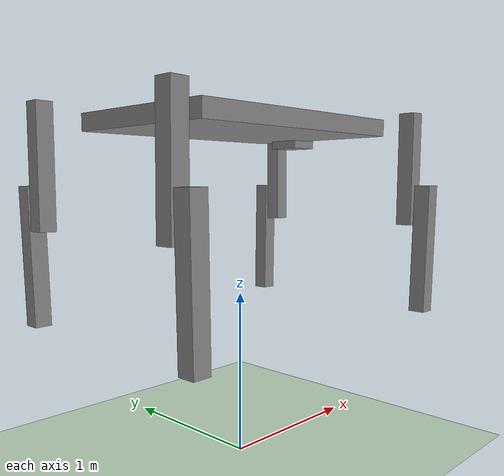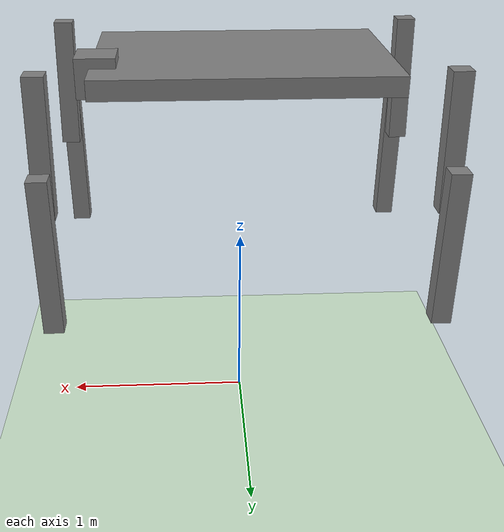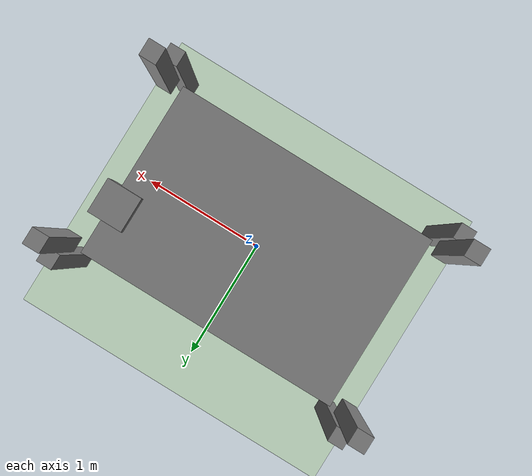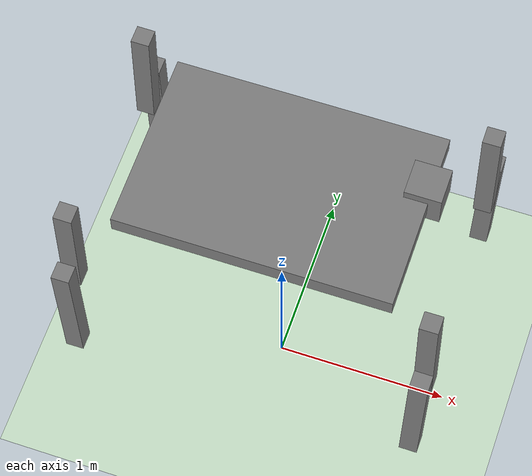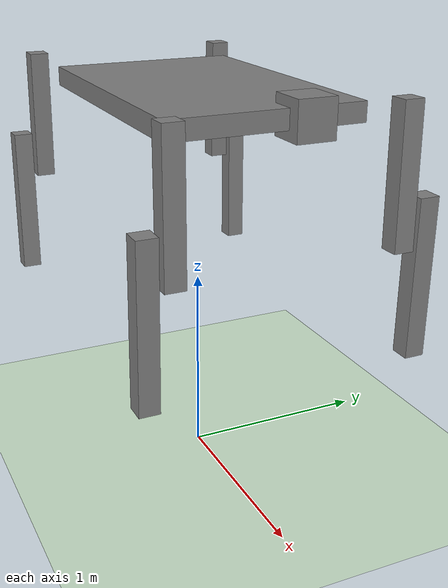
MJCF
<mujoco model="4leg">

  <asset>
      <texture builtin="gradient" height="100" rgb1="1 1 1" rgb2="0 0 0" type="skybox" width="100"/>
      <texture builtin="flat" height="1278" mark="cross" markrgb="1 1 1" name="texgeom" random="0.01" rgb1="0.8 0.6 0.2" rgb2="0.8 0.6 0.2" type="cube" width="127"/>
      <texture builtin="checker" height="100" name="texplane" rgb1="0 0 0" rgb2="0.8 0.8 0.8" type="2d" width="100"/>
      <material name="MatPlane" reflectance="0.5" shininess="1" specular="1" texrepeat="60 60" texture="texplane"/>
      <material name="geom" texture="texgeom" texuniform="true"/>
  </asset>

  <compiler angle="degree" coordinate="local" inertiafromgeom="true" />

  <!-- cheetah default  -->

  <!-- sezeme default -->
  <default>
    <joint armature="0.001" limited="true"/>
    <geom condim="3" density="2.5" margin="0.01" contype="1" conaffinity="1"/>
  </default>

  <option gravity="0 0 -9.81" />
  <!-- timestep="0.016" -->
  <option iterations="50" tolerance="1e-10" solver="Newton" jacobian="dense" cone="pyramidal"/>
      <option noslip_iterations="3"/>

  <size nconmax="50" njmax="200" nstack="10000"/>

  <worldbody>
    <light cutoff="100" diffuse="1 1 1" dir="-0 0 -1.3" directional="true" exponent="1" pos="0 0 1.3" specular=".1 .1 .1"/>
    <!-- conaffinity="1"  is cheetah value -->
    <!-- contype="1" conaffinity="0" is sezeme value  -->
    <geom conaffinity="1" condim="3" material="MatPlane" name="floor" pos="0 0 0" rgba="0.8 0.9 0.8 1" size="40 40 10" type="plane"/>
    <!-- world body defult part -->

    <body name="spine" pos="0 0 2" >
    <camera name="track" mode="trackcom" pos="0 -3 0.3" xyaxes="1 0 0 0 0 1"/>
      <geom name ="spine" type="box" size="0.75 0.5 0.05"/>
            <geom name ="head" type="box" pos = "0.72 0.2 0" size="0.1 0.1 0.1"/>

      <body name="frontrightleg" pos="0.72 0.5 0">
        <joint  name="frontrightleg1"  pos="0 0.01 0"         damping=".010"    range="-1.571 1.571" type="hinge" axis="0 1 0"/>
        <geom name="frontrightleg" pos="0.25 0.06 -.25" euler = "0 -0.78539 0" size="0.05 0.05 0.35" type="box"/>
        <body pos=".5 0.17 -.5">
          <joint name="frontrightleg2" pos="0 0 0"            damping=".010"    range="-1.571 1.571" type="hinge" axis="0 1 0"/>
          <geom pos="-0.25 0.01 -.25" euler = "0 0.78539 0" size="0.05 0.05 .4" type="box"/>
        </body>
      </body>

      <body name="frontleftleg" pos="0.72 -0.5 0">
        <joint  name="frontleftleg1"  pos="0 -0.01 0"         damping=".010"    range="-1.571 1.571" type="hinge" axis="0 1 0"/>
        <geom name="frontleftleg" pos="0.25 -0.06 -.25" euler = "0 -0.78539 0" size="0.05 0.05 0.35" type="box"/>
        <body pos=".5 -0.17 -.5">
          <joint name="frontleftleg2" pos="0 0 0"            damping=".010"    range="-1.571 1.571" type="hinge" axis="0 1 0"/>
          <geom pos="-0.25 -0.01 -.25" euler = "0 0.78539 0" size="0.05 0.05 .4" type="box"/>
        </body>
      </body>

      <body name="backrightleg" pos="-0.72 0.5 0">
        <joint  name="backrightleg1"  pos="0 0.01 0"         damping=".010"    range="-1.571 1.571" type="hinge" axis="0 1 0"/>
        <geom pos="-0.25 0.06 -.25" euler = "0 0.78539 0" size="0.05 0.05 0.35" type="box"/>
        <body pos="-.5 0.17 -.5">
          <joint name="backrightleg2" pos="0 0 0"            damping=".010"    range="-1.571 1.571" type="hinge" axis="0 1 0"/>
          <geom pos="0.25 0.01 -.25" euler = "0 -0.78539 0" size="0.05 0.05 .4" type="box"/>
        </body>
      </body>

      <body name="backleftleg" pos="-0.72 -0.5 0">
        <joint  name="backleftleg1"  pos="0 -0.01 0"         damping=".010"    range="-1.571 1.571" type="hinge" axis="0 1 0"/>
        <geom name="backleftleg" pos="-0.25 -0.06 -.25" euler = "0 0.78539 0" size="0.05 0.05 0.35" type="box"/>
        <body pos="-.5 -0.17 -.5">
          <joint name="backleftleg2" pos="0 0 0"            damping=".010"    range="-1.571 1.571" type="hinge" axis="0 1 0"/>
          <geom pos="0.25 -0.01 -.25" euler = "0 -0.78539 0" size="0.05 0.05 .4" type="box"/>
        </body>
      </body>

    </body>

  </worldbody>

  <actuator>
    <!-- 1.571  = 90 degree -->
      <motor joint="frontrightleg1" ctrlrange ="-1.5 1.5" forcelimited="true" forcerange="-1.5 1.5" />
      <motor joint="frontrightleg2" ctrlrange ="-1.5 1.5" forcelimited="true" forcerange="-1.5 1.5" />

      <motor joint="frontleftleg1" ctrlrange ="-1.5 1.5" forcelimited="true" forcerange="-1.5 1.5" />
      <motor joint="frontleftleg2" ctrlrange ="-1.5 1.5" forcelimited="true" forcerange="-1.5 1.5" />

      <motor joint="backrightleg1" ctrlrange ="-1.5 1.5" forcelimited="true" forcerange="-1.5 1.5" />
      <motor joint="backrightleg2" ctrlrange ="-1.5 1.5" forcelimited="true" forcerange="-1.5 1.5" />

      <motor joint="backleftleg1" ctrlrange ="-1.5 1.5" forcelimited="true" forcerange="-1.5 1.5" />
      <motor joint="backleftleg2" ctrlrange ="-1.5 1.5" forcelimited="true" forcerange="-1.5 1.5" />

  </actuator>

</mujoco>
